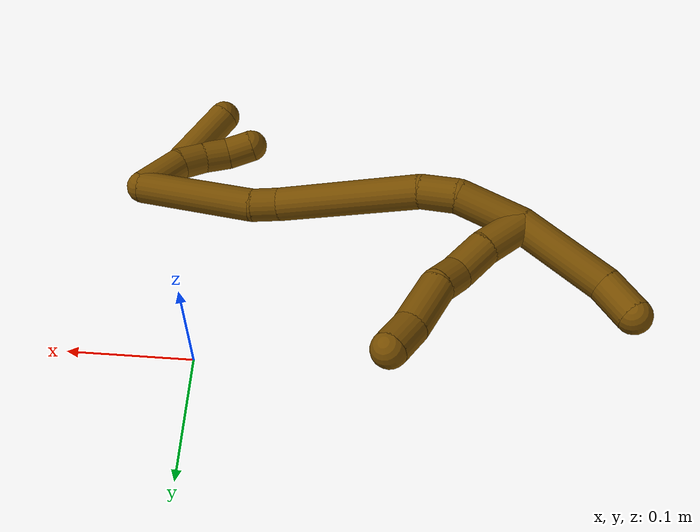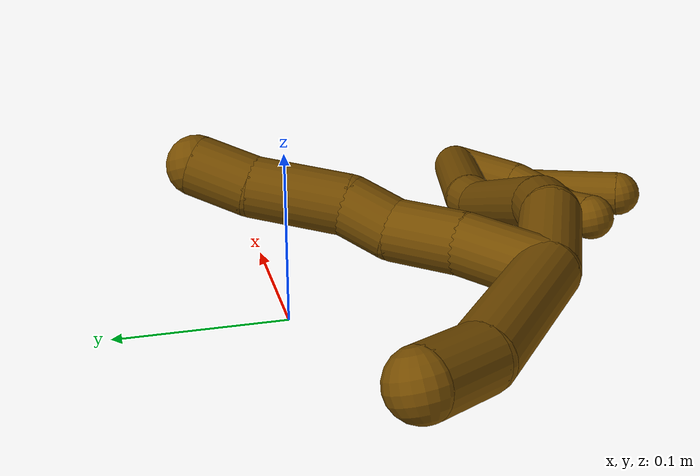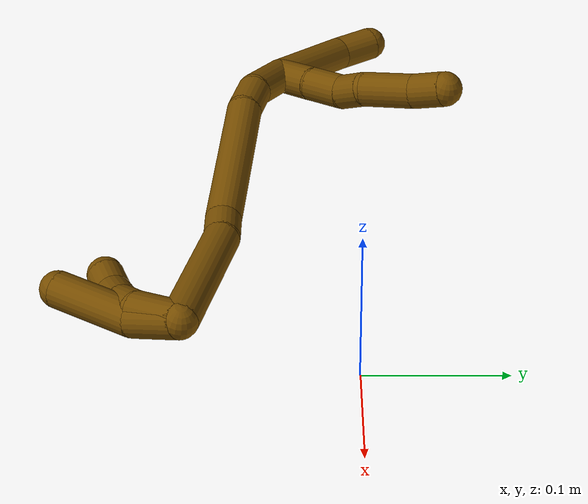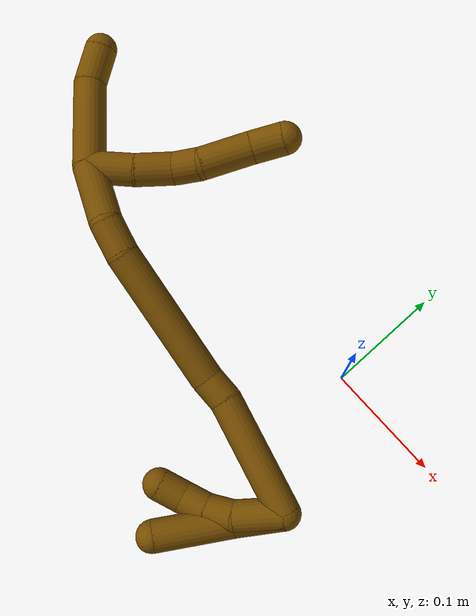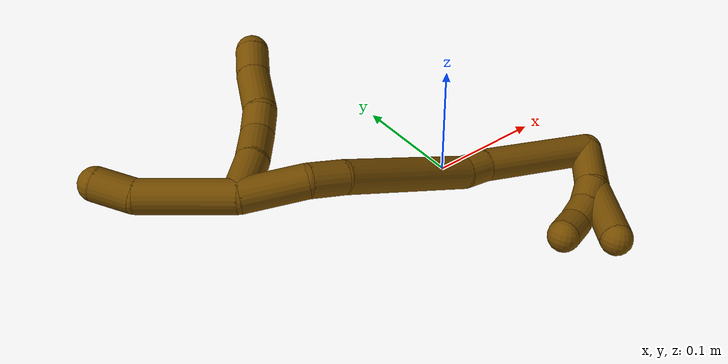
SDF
<sdf version="1.7">
 <world name="default">
  <model name="12">
   <static>0</static>
   <link name="12">
    <collision name="collision-cylinder-e_1_2_8">
     <pose>0.013054 0.009263 0.007591 -0.884307 0.828466 -0.410435</pose>
     <geometry><cylinder><radius>0.0125</radius><length>0.035431</length></cylinder></geometry>
     <surface>
      <friction><ode><mu>1.16</mu><mu2>1.16</mu2><slip1>0</slip1><slip2>0</slip2></ode></friction>
      <contact><ode><kp>1e+06</kp><kd>1</kd><max_vel>0</max_vel><min_depth>0.001</min_depth></ode></contact>
     </surface>
    </collision>
    <visual name="visual-cylinder-e_1_2_8">
     <pose>0.013054 0.009263 0.007591 -0.884307 0.828466 -0.410435</pose>
     <geometry><cylinder><radius>0.0125</radius><length>0.035431</length></cylinder></geometry>
     <material><ambient>0.466667 0.301961 0 1</ambient></material>
    </visual>
    <collision name="collision-cylinder-e_2_8_9">
     <pose>0.03605 0.027924 0.020307 -1.07143 0.748424 -0.45807</pose>
     <geometry><cylinder><radius>0.0125</radius><length>0.029219</length></cylinder></geometry>
     <surface>
      <friction><ode><mu>1.16</mu><mu2>1.16</mu2><slip1>0</slip1><slip2>0</slip2></ode></friction>
      <contact><ode><kp>1e+06</kp><kd>1</kd><max_vel>0</max_vel><min_depth>0.001</min_depth></ode></contact>
     </surface>
    </collision>
    <visual name="visual-cylinder-e_2_8_9">
     <pose>0.03605 0.027924 0.020307 -1.07143 0.748424 -0.45807</pose>
     <geometry><cylinder><radius>0.0125</radius><length>0.029219</length></cylinder></geometry>
     <material><ambient>0.466667 0.301961 0 1</ambient></material>
    </visual>
    <collision name="collision-cylinder-e_3_9_10">
     <pose>0.051576 0.043368 0.031977 -0.745929 0.559918 -0.22405</pose>
     <geometry><cylinder><radius>0.0125</radius><length>0.021029</length></cylinder></geometry>
     <surface>
      <friction><ode><mu>1.16</mu><mu2>1.16</mu2><slip1>0</slip1><slip2>0</slip2></ode></friction>
      <contact><ode><kp>1e+06</kp><kd>1</kd><max_vel>0</max_vel><min_depth>0.001</min_depth></ode></contact>
     </surface>
    </collision>
    <visual name="visual-cylinder-e_3_9_10">
     <pose>0.051576 0.043368 0.031977 -0.745929 0.559918 -0.22405</pose>
     <geometry><cylinder><radius>0.0125</radius><length>0.021029</length></cylinder></geometry>
     <material><ambient>0.466667 0.301961 0 1</ambient></material>
    </visual>
    <collision name="collision-cylinder-e_4_10_11">
     <pose>0.066346 0.065023 0.046206 -1.11326 0.485776 -0.305961</pose>
     <geometry><cylinder><radius>0.0125</radius><length>0.039348</length></cylinder></geometry>
     <surface>
      <friction><ode><mu>1.16</mu><mu2>1.16</mu2><slip1>0</slip1><slip2>0</slip2></ode></friction>
      <contact><ode><kp>1e+06</kp><kd>1</kd><max_vel>0</max_vel><min_depth>0.001</min_depth></ode></contact>
     </surface>
    </collision>
    <visual name="visual-cylinder-e_4_10_11">
     <pose>0.066346 0.065023 0.046206 -1.11326 0.485776 -0.305961</pose>
     <geometry><cylinder><radius>0.0125</radius><length>0.039348</length></cylinder></geometry>
     <material><ambient>0.466667 0.301961 0 1</ambient></material>
    </visual>
    <collision name="collision-cylinder-e_5_11_6">
     <pose>0.081491 0.089333 0.060576 -0.915756 0.497505 -0.249064</pose>
     <geometry><cylinder><radius>0.0125</radius><length>0.024973</length></cylinder></geometry>
     <surface>
      <friction><ode><mu>1.16</mu><mu2>1.16</mu2><slip1>0</slip1><slip2>0</slip2></ode></friction>
      <contact><ode><kp>1e+06</kp><kd>1</kd><max_vel>0</max_vel><min_depth>0.001</min_depth></ode></contact>
     </surface>
    </collision>
    <visual name="visual-cylinder-e_5_11_6">
     <pose>0.081491 0.089333 0.060576 -0.915756 0.497505 -0.249064</pose>
     <geometry><cylinder><radius>0.0125</radius><length>0.024973</length></cylinder></geometry>
     <material><ambient>0.466667 0.301961 0 1</ambient></material>
    </visual>
    <collision name="collision-cylinder-e_1_2_12">
     <pose>-0.021993 0.026542 -0.007195 -1.83552 -0.674592 0.859672</pose>
     <geometry><cylinder><radius>0.0125</radius><length>0.070426</length></cylinder></geometry>
     <surface>
      <friction><ode><mu>1.16</mu><mu2>1.16</mu2><slip1>0</slip1><slip2>0</slip2></ode></friction>
      <contact><ode><kp>1e+06</kp><kd>1</kd><max_vel>0</max_vel><min_depth>0.001</min_depth></ode></contact>
     </surface>
    </collision>
    <visual name="visual-cylinder-e_1_2_12">
     <pose>-0.021993 0.026542 -0.007195 -1.83552 -0.674592 0.859672</pose>
     <geometry><cylinder><radius>0.0125</radius><length>0.070426</length></cylinder></geometry>
     <material><ambient>0.466667 0.301961 0 1</ambient></material>
    </visual>
    <collision name="collision-cylinder-e_2_12_5">
     <pose>-0.050382 0.066416 -0.014265 -1.56139 -0.447295 0.443244</pose>
     <geometry><cylinder><radius>0.0125</radius><length>0.029574</length></cylinder></geometry>
     <surface>
      <friction><ode><mu>1.16</mu><mu2>1.16</mu2><slip1>0</slip1><slip2>0</slip2></ode></friction>
      <contact><ode><kp>1e+06</kp><kd>1</kd><max_vel>0</max_vel><min_depth>0.001</min_depth></ode></contact>
     </surface>
    </collision>
    <visual name="visual-cylinder-e_2_12_5">
     <pose>-0.050382 0.066416 -0.014265 -1.56139 -0.447295 0.443244</pose>
     <geometry><cylinder><radius>0.0125</radius><length>0.029574</length></cylinder></geometry>
     <material><ambient>0.466667 0.301961 0 1</ambient></material>
    </visual>
    <collision name="collision-cylinder-e_1_2_13">
     <pose>0.018081 -0.013074 0.008101 1.01604 0.865916 0.503748</pose>
     <geometry><cylinder><radius>0.0125</radius><length>0.047475</length></cylinder></geometry>
     <surface>
      <friction><ode><mu>1.16</mu><mu2>1.16</mu2><slip1>0</slip1><slip2>0</slip2></ode></friction>
      <contact><ode><kp>1e+06</kp><kd>1</kd><max_vel>0</max_vel><min_depth>0.001</min_depth></ode></contact>
     </surface>
    </collision>
    <visual name="visual-cylinder-e_1_2_13">
     <pose>0.018081 -0.013074 0.008101 1.01604 0.865916 0.503748</pose>
     <geometry><cylinder><radius>0.0125</radius><length>0.047475</length></cylinder></geometry>
     <material><ambient>0.466667 0.301961 0 1</ambient></material>
    </visual>
    <collision name="collision-cylinder-e_2_13_14">
     <pose>0.048675 -0.031297 0.017818 1.26682 1.16361 0.899946</pose>
     <geometry><cylinder><radius>0.0125</radius><length>0.027256</length></cylinder></geometry>
     <surface>
      <friction><ode><mu>1.16</mu><mu2>1.16</mu2><slip1>0</slip1><slip2>0</slip2></ode></friction>
      <contact><ode><kp>1e+06</kp><kd>1</kd><max_vel>0</max_vel><min_depth>0.001</min_depth></ode></contact>
     </surface>
    </collision>
    <visual name="visual-cylinder-e_2_13_14">
     <pose>0.048675 -0.031297 0.017818 1.26682 1.16361 0.899946</pose>
     <geometry><cylinder><radius>0.0125</radius><length>0.027256</length></cylinder></geometry>
     <material><ambient>0.466667 0.301961 0 1</ambient></material>
    </visual>
    <collision name="collision-cylinder-e_3_14_15">
     <pose>0.115076 -0.048932 0.018579 1.63914 1.34261 1.4097</pose>
     <geometry><cylinder><radius>0.0125</radius><length>0.110643</length></cylinder></geometry>
     <surface>
      <friction><ode><mu>1.16</mu><mu2>1.16</mu2><slip1>0</slip1><slip2>0</slip2></ode></friction>
      <contact><ode><kp>1e+06</kp><kd>1</kd><max_vel>0</max_vel><min_depth>0.001</min_depth></ode></contact>
     </surface>
    </collision>
    <visual name="visual-cylinder-e_3_14_15">
     <pose>0.115076 -0.048932 0.018579 1.63914 1.34261 1.4097</pose>
     <geometry><cylinder><radius>0.0125</radius><length>0.110643</length></cylinder></geometry>
     <material><ambient>0.466667 0.301961 0 1</ambient></material>
    </visual>
    <collision name="collision-cylinder-e_4_15_16">
     <pose>0.179194 -0.063085 0.019852 0.664815 1.31242 0.519651</pose>
     <geometry><cylinder><radius>0.0125</radius><length>0.021162</length></cylinder></geometry>
     <surface>
      <friction><ode><mu>1.16</mu><mu2>1.16</mu2><slip1>0</slip1><slip2>0</slip2></ode></friction>
      <contact><ode><kp>1e+06</kp><kd>1</kd><max_vel>0</max_vel><min_depth>0.001</min_depth></ode></contact>
     </surface>
    </collision>
    <visual name="visual-cylinder-e_4_15_16">
     <pose>0.179194 -0.063085 0.019852 0.664815 1.31242 0.519651</pose>
     <geometry><cylinder><radius>0.0125</radius><length>0.021162</length></cylinder></geometry>
     <material><ambient>0.466667 0.301961 0 1</ambient></material>
    </visual>
    <collision name="collision-cylinder-e_5_16_1">
     <pose>0.231879 -0.082655 0.029784 1.15971 1.13967 0.794676</pose>
     <geometry><cylinder><radius>0.0125</radius><length>0.093464</length></cylinder></geometry>
     <surface>
      <friction><ode><mu>1.16</mu><mu2>1.16</mu2><slip1>0</slip1><slip2>0</slip2></ode></friction>
      <contact><ode><kp>1e+06</kp><kd>1</kd><max_vel>0</max_vel><min_depth>0.001</min_depth></ode></contact>
     </surface>
    </collision>
    <visual name="visual-cylinder-e_5_16_1">
     <pose>0.231879 -0.082655 0.029784 1.15971 1.13967 0.794676</pose>
     <geometry><cylinder><radius>0.0125</radius><length>0.093464</length></cylinder></geometry>
     <material><ambient>0.466667 0.301961 0 1</ambient></material>
    </visual>
    <collision name="collision-cylinder-e_1_1_17">
     <pose>0.264558 -0.113653 0.026755 2.26189 -0.522019 -1.03249</pose>
     <geometry><cylinder><radius>0.0125</radius><length>0.039216</length></cylinder></geometry>
     <surface>
      <friction><ode><mu>1.16</mu><mu2>1.16</mu2><slip1>0</slip1><slip2>0</slip2></ode></friction>
      <contact><ode><kp>1e+06</kp><kd>1</kd><max_vel>0</max_vel><min_depth>0.001</min_depth></ode></contact>
     </surface>
    </collision>
    <visual name="visual-cylinder-e_1_1_17">
     <pose>0.264558 -0.113653 0.026755 2.26189 -0.522019 -1.03249</pose>
     <geometry><cylinder><radius>0.0125</radius><length>0.039216</length></cylinder></geometry>
     <material><ambient>0.466667 0.301961 0 1</ambient></material>
    </visual>
    <collision name="collision-cylinder-e_2_17_4">
     <pose>0.236009 -0.149516 0.00864 1.88034 -0.665754 -0.884565</pose>
     <geometry><cylinder><radius>0.0125</radius><length>0.060784</length></cylinder></geometry>
     <surface>
      <friction><ode><mu>1.16</mu><mu2>1.16</mu2><slip1>0</slip1><slip2>0</slip2></ode></friction>
      <contact><ode><kp>1e+06</kp><kd>1</kd><max_vel>0</max_vel><min_depth>0.001</min_depth></ode></contact>
     </surface>
    </collision>
    <visual name="visual-cylinder-e_2_17_4">
     <pose>0.236009 -0.149516 0.00864 1.88034 -0.665754 -0.884565</pose>
     <geometry><cylinder><radius>0.0125</radius><length>0.060784</length></cylinder></geometry>
     <material><ambient>0.466667 0.301961 0 1</ambient></material>
    </visual>
    <collision name="collision-cylinder-e_1_1_18">
     <pose>0.2626 -0.11268 0.028874 2.19403 -0.666167 -1.18717</pose>
     <geometry><cylinder><radius>0.0125</radius><length>0.03798</length></cylinder></geometry>
     <surface>
      <friction><ode><mu>1.16</mu><mu2>1.16</mu2><slip1>0</slip1><slip2>0</slip2></ode></friction>
      <contact><ode><kp>1e+06</kp><kd>1</kd><max_vel>0</max_vel><min_depth>0.001</min_depth></ode></contact>
     </surface>
    </collision>
    <visual name="visual-cylinder-e_1_1_18">
     <pose>0.2626 -0.11268 0.028874 2.19403 -0.666167 -1.18717</pose>
     <geometry><cylinder><radius>0.0125</radius><length>0.03798</length></cylinder></geometry>
     <material><ambient>0.466667 0.301961 0 1</ambient></material>
    </visual>
    <collision name="collision-cylinder-e_2_18_19">
     <pose>0.243039 -0.12875 0.014377 2.54271 -0.840925 -1.93301</pose>
     <geometry><cylinder><radius>0.0125</radius><length>0.021002</length></cylinder></geometry>
     <surface>
      <friction><ode><mu>1.16</mu><mu2>1.16</mu2><slip1>0</slip1><slip2>0</slip2></ode></friction>
      <contact><ode><kp>1e+06</kp><kd>1</kd><max_vel>0</max_vel><min_depth>0.001</min_depth></ode></contact>
     </surface>
    </collision>
    <visual name="visual-cylinder-e_2_18_19">
     <pose>0.243039 -0.12875 0.014377 2.54271 -0.840925 -1.93301</pose>
     <geometry><cylinder><radius>0.0125</radius><length>0.021002</length></cylinder></geometry>
     <material><ambient>0.466667 0.301961 0 1</ambient></material>
    </visual>
    <collision name="collision-cylinder-e_3_19_20">
     <pose>0.22641 -0.134562 0.003736 2.77485 -1.03691 -2.51301</pose>
     <geometry><cylinder><radius>0.0125</radius><length>0.020452</length></cylinder></geometry>
     <surface>
      <friction><ode><mu>1.16</mu><mu2>1.16</mu2><slip1>0</slip1><slip2>0</slip2></ode></friction>
      <contact><ode><kp>1e+06</kp><kd>1</kd><max_vel>0</max_vel><min_depth>0.001</min_depth></ode></contact>
     </surface>
    </collision>
    <visual name="visual-cylinder-e_3_19_20">
     <pose>0.22641 -0.134562 0.003736 2.77485 -1.03691 -2.51301</pose>
     <geometry><cylinder><radius>0.0125</radius><length>0.020452</length></cylinder></geometry>
     <material><ambient>0.466667 0.301961 0 1</ambient></material>
    </visual>
    <collision name="collision-cylinder-e_4_20_3">
     <pose>0.207831 -0.13847 -0.003575 2.44758 -1.25527 -2.21675</pose>
     <geometry><cylinder><radius>0.0125</radius><length>0.020566</length></cylinder></geometry>
     <surface>
      <friction><ode><mu>1.16</mu><mu2>1.16</mu2><slip1>0</slip1><slip2>0</slip2></ode></friction>
      <contact><ode><kp>1e+06</kp><kd>1</kd><max_vel>0</max_vel><min_depth>0.001</min_depth></ode></contact>
     </surface>
    </collision>
    <visual name="visual-cylinder-e_4_20_3">
     <pose>0.207831 -0.13847 -0.003575 2.44758 -1.25527 -2.21675</pose>
     <geometry><cylinder><radius>0.0125</radius><length>0.020566</length></cylinder></geometry>
     <material><ambient>0.466667 0.301961 0 1</ambient></material>
    </visual>
    <collision name="collision-sphere-3">
     <pose>0.198056 -0.140511 -0.006028 0 -0 0</pose>
     <geometry><sphere><radius>0.0125</radius></sphere></geometry>
     <surface>
      <friction><ode><mu>1.16</mu><mu2>1.16</mu2><slip1>0</slip1><slip2>0</slip2></ode></friction>
      <contact><ode><kp>1e+06</kp><kd>1</kd><max_vel>0</max_vel><min_depth>0.001</min_depth></ode></contact>
     </surface>
    </collision>
    <visual name="visual-sphere-3">
     <pose>0.198056 -0.140511 -0.006028 0 -0 0</pose>
     <geometry><sphere><radius>0.0125</radius></sphere></geometry>
     <material><ambient>0.466667 0.301961 0 1</ambient></material>
    </visual>
    <collision name="collision-sphere-20">
     <pose>0.217607 -0.136429 -0.001122 0 -0 0</pose>
     <geometry><sphere><radius>0.0125</radius></sphere></geometry>
     <surface>
      <friction><ode><mu>1.16</mu><mu2>1.16</mu2><slip1>0</slip1><slip2>0</slip2></ode></friction>
      <contact><ode><kp>1e+06</kp><kd>1</kd><max_vel>0</max_vel><min_depth>0.001</min_depth></ode></contact>
     </surface>
    </collision>
    <visual name="visual-sphere-20">
     <pose>0.217607 -0.136429 -0.001122 0 -0 0</pose>
     <geometry><sphere><radius>0.0125</radius></sphere></geometry>
     <material><ambient>0.466667 0.301961 0 1</ambient></material>
    </visual>
    <collision name="collision-sphere-19">
     <pose>0.235213 -0.132696 0.008594 0 -0 0</pose>
     <geometry><sphere><radius>0.0125</radius></sphere></geometry>
     <surface>
      <friction><ode><mu>1.16</mu><mu2>1.16</mu2><slip1>0</slip1><slip2>0</slip2></ode></friction>
      <contact><ode><kp>1e+06</kp><kd>1</kd><max_vel>0</max_vel><min_depth>0.001</min_depth></ode></contact>
     </surface>
    </collision>
    <visual name="visual-sphere-19">
     <pose>0.235213 -0.132696 0.008594 0 -0 0</pose>
     <geometry><sphere><radius>0.0125</radius></sphere></geometry>
     <material><ambient>0.466667 0.301961 0 1</ambient></material>
    </visual>
    <collision name="collision-sphere-6">
     <pose>0.08745 0.098035 0.06726 0 -0 0</pose>
     <geometry><sphere><radius>0.0125</radius></sphere></geometry>
     <surface>
      <friction><ode><mu>1.16</mu><mu2>1.16</mu2><slip1>0</slip1><slip2>0</slip2></ode></friction>
      <contact><ode><kp>1e+06</kp><kd>1</kd><max_vel>0</max_vel><min_depth>0.001</min_depth></ode></contact>
     </surface>
    </collision>
    <visual name="visual-sphere-6">
     <pose>0.08745 0.098035 0.06726 0 -0 0</pose>
     <geometry><sphere><radius>0.0125</radius></sphere></geometry>
     <material><ambient>0.466667 0.301961 0 1</ambient></material>
    </visual>
    <collision name="collision-sphere-11">
     <pose>0.075532 0.080631 0.053891 0 -0 0</pose>
     <geometry><sphere><radius>0.0125</radius></sphere></geometry>
     <surface>
      <friction><ode><mu>1.16</mu><mu2>1.16</mu2><slip1>0</slip1><slip2>0</slip2></ode></friction>
      <contact><ode><kp>1e+06</kp><kd>1</kd><max_vel>0</max_vel><min_depth>0.001</min_depth></ode></contact>
     </surface>
    </collision>
    <visual name="visual-sphere-11">
     <pose>0.075532 0.080631 0.053891 0 -0 0</pose>
     <geometry><sphere><radius>0.0125</radius></sphere></geometry>
     <material><ambient>0.466667 0.301961 0 1</ambient></material>
    </visual>
    <collision name="collision-sphere-10">
     <pose>0.057161 0.049414 0.03852 0 -0 0</pose>
     <geometry><sphere><radius>0.0125</radius></sphere></geometry>
     <surface>
      <friction><ode><mu>1.16</mu><mu2>1.16</mu2><slip1>0</slip1><slip2>0</slip2></ode></friction>
      <contact><ode><kp>1e+06</kp><kd>1</kd><max_vel>0</max_vel><min_depth>0.001</min_depth></ode></contact>
     </surface>
    </collision>
    <visual name="visual-sphere-10">
     <pose>0.057161 0.049414 0.03852 0 -0 0</pose>
     <geometry><sphere><radius>0.0125</radius></sphere></geometry>
     <material><ambient>0.466667 0.301961 0 1</ambient></material>
    </visual>
    <collision name="collision-sphere-9">
     <pose>0.045992 0.037322 0.025434 0 -0 0</pose>
     <geometry><sphere><radius>0.0125</radius></sphere></geometry>
     <surface>
      <friction><ode><mu>1.16</mu><mu2>1.16</mu2><slip1>0</slip1><slip2>0</slip2></ode></friction>
      <contact><ode><kp>1e+06</kp><kd>1</kd><max_vel>0</max_vel><min_depth>0.001</min_depth></ode></contact>
     </surface>
    </collision>
    <visual name="visual-sphere-9">
     <pose>0.045992 0.037322 0.025434 0 -0 0</pose>
     <geometry><sphere><radius>0.0125</radius></sphere></geometry>
     <material><ambient>0.466667 0.301961 0 1</ambient></material>
    </visual>
    <collision name="collision-sphere-2">
     <geometry><sphere><radius>0.0125</radius></sphere></geometry>
     <surface>
      <friction><ode><mu>1.16</mu><mu2>1.16</mu2><slip1>0</slip1><slip2>0</slip2></ode></friction>
      <contact><ode><kp>1e+06</kp><kd>1</kd><max_vel>0</max_vel><min_depth>0.001</min_depth></ode></contact>
     </surface>
    </collision>
    <visual name="visual-sphere-2">
     <geometry><sphere><radius>0.0125</radius></sphere></geometry>
     <material><ambient>0.466667 0.301961 0 1</ambient></material>
    </visual>
    <collision name="collision-sphere-8">
     <pose>0.026109 0.018526 0.015181 0 -0 0</pose>
     <geometry><sphere><radius>0.0125</radius></sphere></geometry>
     <surface>
      <friction><ode><mu>1.16</mu><mu2>1.16</mu2><slip1>0</slip1><slip2>0</slip2></ode></friction>
      <contact><ode><kp>1e+06</kp><kd>1</kd><max_vel>0</max_vel><min_depth>0.001</min_depth></ode></contact>
     </surface>
    </collision>
    <visual name="visual-sphere-8">
     <pose>0.026109 0.018526 0.015181 0 -0 0</pose>
     <geometry><sphere><radius>0.0125</radius></sphere></geometry>
     <material><ambient>0.466667 0.301961 0 1</ambient></material>
    </visual>
    <collision name="collision-sphere-12">
     <pose>-0.043986 0.053084 -0.01439 0 -0 0</pose>
     <geometry><sphere><radius>0.0125</radius></sphere></geometry>
     <surface>
      <friction><ode><mu>1.16</mu><mu2>1.16</mu2><slip1>0</slip1><slip2>0</slip2></ode></friction>
      <contact><ode><kp>1e+06</kp><kd>1</kd><max_vel>0</max_vel><min_depth>0.001</min_depth></ode></contact>
     </surface>
    </collision>
    <visual name="visual-sphere-12">
     <pose>-0.043986 0.053084 -0.01439 0 -0 0</pose>
     <geometry><sphere><radius>0.0125</radius></sphere></geometry>
     <material><ambient>0.466667 0.301961 0 1</ambient></material>
    </visual>
    <collision name="collision-sphere-5">
     <pose>-0.056778 0.079748 -0.014139 0 -0 0</pose>
     <geometry><sphere><radius>0.0125</radius></sphere></geometry>
     <surface>
      <friction><ode><mu>1.16</mu><mu2>1.16</mu2><slip1>0</slip1><slip2>0</slip2></ode></friction>
      <contact><ode><kp>1e+06</kp><kd>1</kd><max_vel>0</max_vel><min_depth>0.001</min_depth></ode></contact>
     </surface>
    </collision>
    <visual name="visual-sphere-5">
     <pose>-0.056778 0.079748 -0.014139 0 -0 0</pose>
     <geometry><sphere><radius>0.0125</radius></sphere></geometry>
     <material><ambient>0.466667 0.301961 0 1</ambient></material>
    </visual>
    <collision name="collision-sphere-13">
     <pose>0.036161 -0.026148 0.016203 0 -0 0</pose>
     <geometry><sphere><radius>0.0125</radius></sphere></geometry>
     <surface>
      <friction><ode><mu>1.16</mu><mu2>1.16</mu2><slip1>0</slip1><slip2>0</slip2></ode></friction>
      <contact><ode><kp>1e+06</kp><kd>1</kd><max_vel>0</max_vel><min_depth>0.001</min_depth></ode></contact>
     </surface>
    </collision>
    <visual name="visual-sphere-13">
     <pose>0.036161 -0.026148 0.016203 0 -0 0</pose>
     <geometry><sphere><radius>0.0125</radius></sphere></geometry>
     <material><ambient>0.466667 0.301961 0 1</ambient></material>
    </visual>
    <collision name="collision-sphere-14">
     <pose>0.061189 -0.036447 0.019434 0 -0 0</pose>
     <geometry><sphere><radius>0.0125</radius></sphere></geometry>
     <surface>
      <friction><ode><mu>1.16</mu><mu2>1.16</mu2><slip1>0</slip1><slip2>0</slip2></ode></friction>
      <contact><ode><kp>1e+06</kp><kd>1</kd><max_vel>0</max_vel><min_depth>0.001</min_depth></ode></contact>
     </surface>
    </collision>
    <visual name="visual-sphere-14">
     <pose>0.061189 -0.036447 0.019434 0 -0 0</pose>
     <geometry><sphere><radius>0.0125</radius></sphere></geometry>
     <material><ambient>0.466667 0.301961 0 1</ambient></material>
    </visual>
    <collision name="collision-sphere-15">
     <pose>0.168964 -0.061417 0.017725 0 -0 0</pose>
     <geometry><sphere><radius>0.0125</radius></sphere></geometry>
     <surface>
      <friction><ode><mu>1.16</mu><mu2>1.16</mu2><slip1>0</slip1><slip2>0</slip2></ode></friction>
      <contact><ode><kp>1e+06</kp><kd>1</kd><max_vel>0</max_vel><min_depth>0.001</min_depth></ode></contact>
     </surface>
    </collision>
    <visual name="visual-sphere-15">
     <pose>0.168964 -0.061417 0.017725 0 -0 0</pose>
     <geometry><sphere><radius>0.0125</radius></sphere></geometry>
     <material><ambient>0.466667 0.301961 0 1</ambient></material>
    </visual>
    <collision name="collision-sphere-16">
     <pose>0.189423 -0.064753 0.02198 0 -0 0</pose>
     <geometry><sphere><radius>0.0125</radius></sphere></geometry>
     <surface>
      <friction><ode><mu>1.16</mu><mu2>1.16</mu2><slip1>0</slip1><slip2>0</slip2></ode></friction>
      <contact><ode><kp>1e+06</kp><kd>1</kd><max_vel>0</max_vel><min_depth>0.001</min_depth></ode></contact>
     </surface>
    </collision>
    <visual name="visual-sphere-16">
     <pose>0.189423 -0.064753 0.02198 0 -0 0</pose>
     <geometry><sphere><radius>0.0125</radius></sphere></geometry>
     <material><ambient>0.466667 0.301961 0 1</ambient></material>
    </visual>
    <collision name="collision-sphere-1">
     <pose>0.274335 -0.100557 0.037588 0 -0 0</pose>
     <geometry><sphere><radius>0.0125</radius></sphere></geometry>
     <surface>
      <friction><ode><mu>1.16</mu><mu2>1.16</mu2><slip1>0</slip1><slip2>0</slip2></ode></friction>
      <contact><ode><kp>1e+06</kp><kd>1</kd><max_vel>0</max_vel><min_depth>0.001</min_depth></ode></contact>
     </surface>
    </collision>
    <visual name="visual-sphere-1">
     <pose>0.274335 -0.100557 0.037588 0 -0 0</pose>
     <geometry><sphere><radius>0.0125</radius></sphere></geometry>
     <material><ambient>0.466667 0.301961 0 1</ambient></material>
    </visual>
    <collision name="collision-sphere-18">
     <pose>0.250864 -0.124803 0.02016 0 -0 0</pose>
     <geometry><sphere><radius>0.0125</radius></sphere></geometry>
     <surface>
      <friction><ode><mu>1.16</mu><mu2>1.16</mu2><slip1>0</slip1><slip2>0</slip2></ode></friction>
      <contact><ode><kp>1e+06</kp><kd>1</kd><max_vel>0</max_vel><min_depth>0.001</min_depth></ode></contact>
     </surface>
    </collision>
    <visual name="visual-sphere-18">
     <pose>0.250864 -0.124803 0.02016 0 -0 0</pose>
     <geometry><sphere><radius>0.0125</radius></sphere></geometry>
     <material><ambient>0.466667 0.301961 0 1</ambient></material>
    </visual>
    <collision name="collision-sphere-17">
     <pose>0.254781 -0.12675 0.015921 0 -0 0</pose>
     <geometry><sphere><radius>0.0125</radius></sphere></geometry>
     <surface>
      <friction><ode><mu>1.16</mu><mu2>1.16</mu2><slip1>0</slip1><slip2>0</slip2></ode></friction>
      <contact><ode><kp>1e+06</kp><kd>1</kd><max_vel>0</max_vel><min_depth>0.001</min_depth></ode></contact>
     </surface>
    </collision>
    <visual name="visual-sphere-17">
     <pose>0.254781 -0.12675 0.015921 0 -0 0</pose>
     <geometry><sphere><radius>0.0125</radius></sphere></geometry>
     <material><ambient>0.466667 0.301961 0 1</ambient></material>
    </visual>
    <collision name="collision-sphere-4">
     <pose>0.217237 -0.172282 0.001359 0 -0 0</pose>
     <geometry><sphere><radius>0.0125</radius></sphere></geometry>
     <surface>
      <friction><ode><mu>1.16</mu><mu2>1.16</mu2><slip1>0</slip1><slip2>0</slip2></ode></friction>
      <contact><ode><kp>1e+06</kp><kd>1</kd><max_vel>0</max_vel><min_depth>0.001</min_depth></ode></contact>
     </surface>
    </collision>
    <visual name="visual-sphere-4">
     <pose>0.217237 -0.172282 0.001359 0 -0 0</pose>
     <geometry><sphere><radius>0.0125</radius></sphere></geometry>
     <material><ambient>0.466667 0.301961 0 1</ambient></material>
    </visual>
    <inertial>
     <pose>0.12439 -0.041864 0.01739 0 -0 0</pose>
     <mass>0.75</mass>
     <inertia>
      <ixx>0.000136</ixx>
      <ixy>0</ixy>
      <ixz>0</ixz>
      <iyy>0.00026</iyy>
      <iyz>0</iyz>
      <izz>-0.00011</izz>
     </inertia>
    </inertial>
   </link>
   <pose>-0.23349 -0.055621 0.126233 -0.089119 0.382005 0.137677</pose>
  </model>
 </world>
</sdf>
